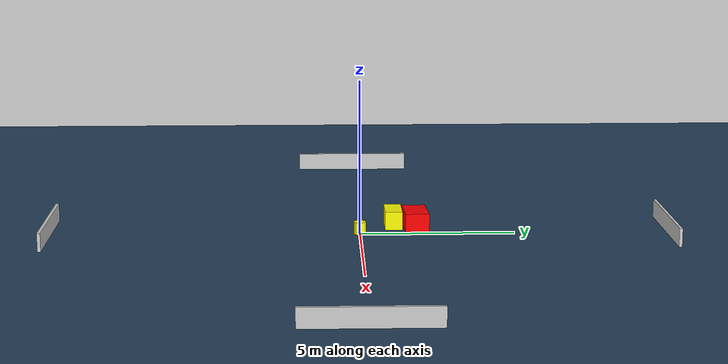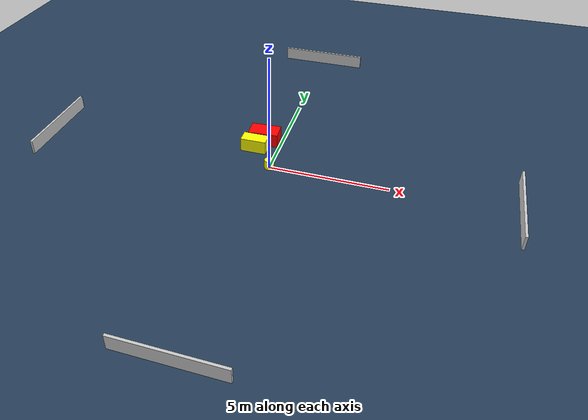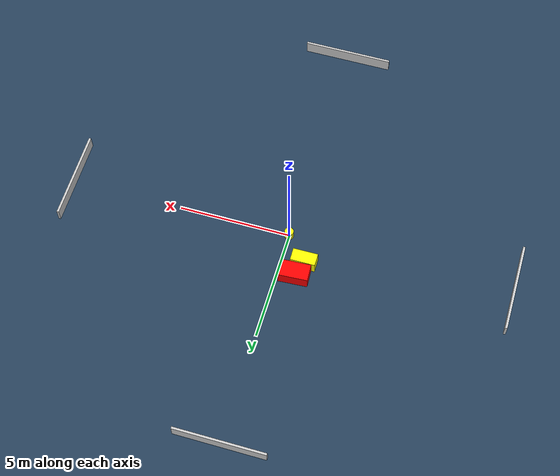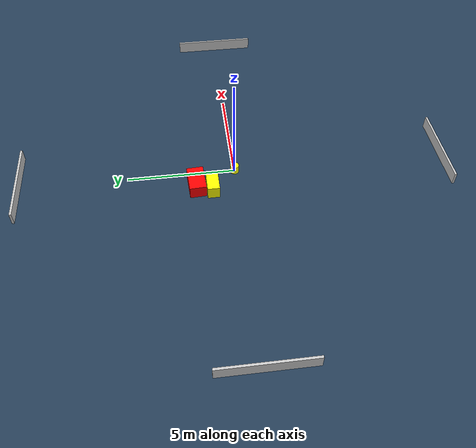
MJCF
<?xml version="1.0" ?>
<mujoco model="generated_environment">
  <option timestep="0.01" integrator="RK4" cone="elliptic"/>
  <default>
    <geom density="1"/>
  </default>
  <asset>
    <texture builtin="gradient" height="3072" name="skybox" rgb1="0.3 0.5 0.7" rgb2="0 0 0" type="skybox" width="512"/>
    <texture builtin="checker" height="300" name="groundplane" rgb1="0.2 0.3 0.4" rgb2="0.1 0.2 0.3" type="2d" width="300"/>
    <material name="groundplane" reflectance="0.2" texrepeat="5 5" texture="groundplane"/>
  </asset>
  <worldbody>
    <light dir="0 0 -1" directional="true" pos="0 0 1.5"/>
    <geom condim="3" friction="0.5 0.005 0.001" material="groundplane" name="floor" pos="0 0 0" size="0 0 0.05" type="plane"/>
    <body name="walls">
      <geom name="wall_1" condim="4" pos="-10.0 0.0 0.3" rgba="0.800000011920929 0.800000011920929 0.800000011920929 1.0" size="0.05 2.0 0.3" type="box"/>
      <geom name="wall_2" condim="4" pos="10.0 0.0 0.3" rgba="0.800000011920929 0.800000011920929 0.800000011920929 1.0" size="0.05 2.0 0.3" type="box"/>
      <geom name="wall_3" condim="4" pos="0.0 -10.0 0.3" rgba="0.800000011920929 0.800000011920929 0.800000011920929 1.0" size="2.0 0.05 0.3" type="box"/>
      <geom name="wall_4" condim="4" pos="0.0 10.0 0.3" rgba="0.800000011920929 0.800000011920929 0.800000011920929 1.0" size="2.0 0.05 0.3" type="box"/>
    </body>
    <body name="robot">
      <joint name="joint_x" type="slide" pos="0 0 0" axis="1 0 0"/>
      <joint name="joint_y" type="slide" pos="0 0 0" axis="0 1 0"/>
      <geom name="robot" type="cylinder" pos="0.0 0.0 0.2" size="0.2 0.2 0.0" mass="5.0" friction="1.0 0.005 0.0001" condim="4" rgba="1.0 1.0 0.0 1.0"/>
    </body>
    <body name="obstacle_1_movable">
      <geom name="obstacle_1_movable" condim="4" pos="-0.9921451478404463 1.12344992538582 0.3" euler="0 0 0.2075012759487871" friction="0.0 0.005 0.001" rgba="1.0 1.0 0.0 1.0" size="0.5530582712881216 0.28157977745940943 0.3" type="box" mass="0.1"/>
      <joint type="free"/>
    </body>
    <body name="obstacle_2_static">
      <geom name="obstacle_2_static" condim="4" pos="-0.7704789485402234 1.844031408560457 0.3" euler="0 0 273.2732753464166" friction="0.0 0.005 0.001" rgba="1.0 0.0 0.0 1.0" size="0.3844349925253895 0.6476180885882221 0.3" type="box"/>
    </body>
  </worldbody>
  <actuator>
    <motor name="actuator_x" joint="joint_x" gear="1" ctrlrange="-1 1"/>
    <motor name="actuator_y" joint="joint_y" gear="1" ctrlrange="-1 1"/>
  </actuator>
</mujoco>
